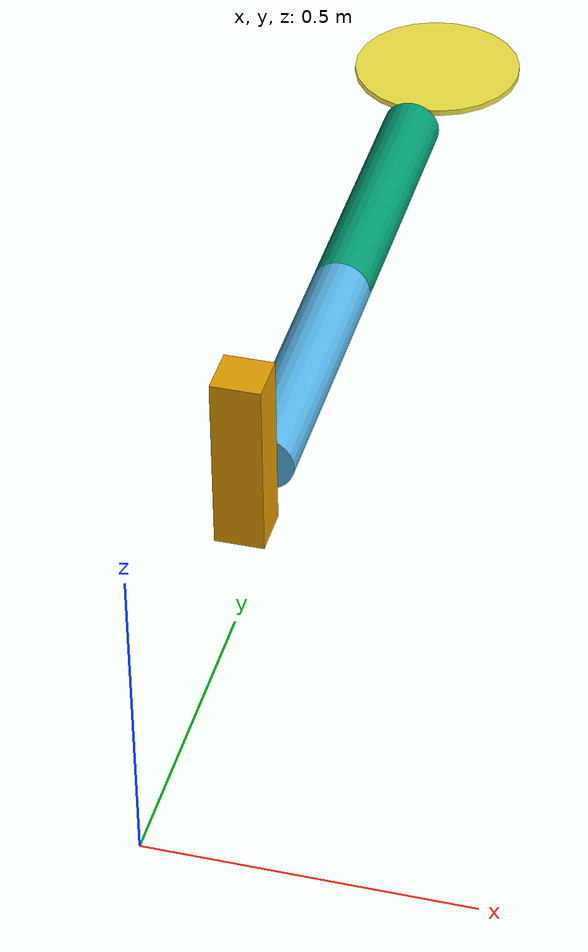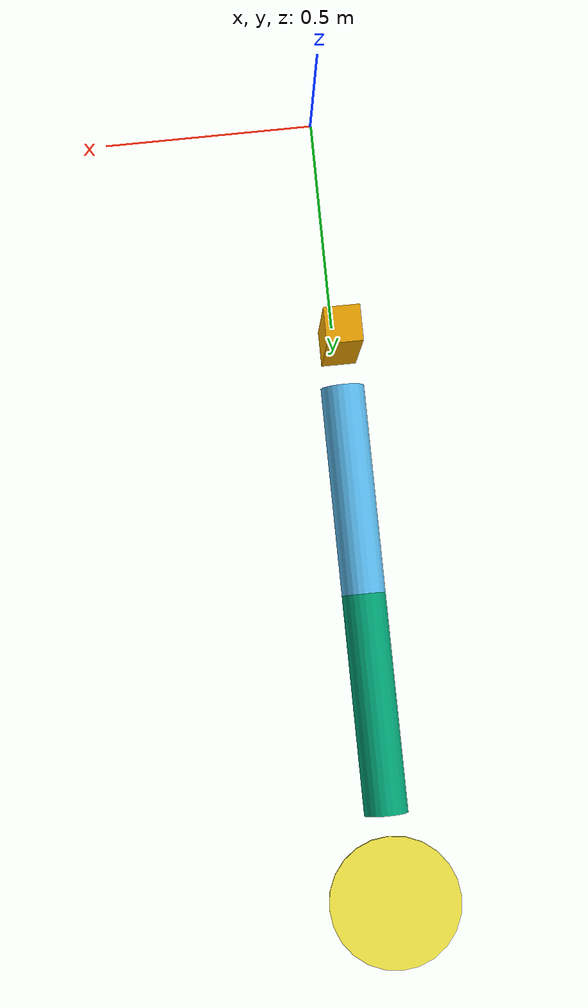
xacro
<?xml version="1.0"?>
<robot name="rocuto" xmlns:xacro="http://www.ros.org/wiki/xacro">

  <!-- Included URDF/XACRO Files-->

  <xacro:include filename="$(find rocuto_pkg)/urdf/macros.xacro" />
  <xacro:include filename="$(find rocuto_pkg)/urdf/materials.xacro" />
  <xacro:include filename="$(find rocuto_pkg)/urdf/gazebo_rocuto.urdf.gazebo" />

  <!-- constants -->
  <xacro:property name="M_PI" value="3.14159"/>

  <!-- world properties -->
  <xacro:property name="world_x" value="0.0" />
  <xacro:property name="world_y" value="0.0" />
  <xacro:property name="world_z" value="0.03" />

  <!-- frame properties -->
  <xacro:property name="frame_x_size" value="0.08" />
  <xacro:property name="frame_y_size" value="0.08" />
  <xacro:property name="frame_z_size" value="0.3" />

  <!-- link Properties -->
  <xacro:property name="link1_length" value="0.5" />
  <xacro:property name="link1_radius" value="0.05" />

  <!-- tool Properties -->
  <xacro:property name="tool_length" value="0.3" />
  <xacro:property name="tool_width" value="0.15" />
  <xacro:property name="tool_height" value="0.01" />

  <!-- frame origin -->
  <xacro:property name="frame_x_origin" value="0" />
  <xacro:property name="frame_y_origin" value="0.5708" />
  <xacro:property name="frame_z_origin" value="0.1" />

  <!-- joint 1 origin -->
  <xacro:property name="joint1_x" value="0" />
  <xacro:property name="joint1_y" value="${frame_y_origin + frame_y_size}" />
  <xacro:property name="joint1_z" value="0" />

  <!-- joint 2 origin -->
  <xacro:property name="joint2_x" value="0" />
  <xacro:property name="joint2_y" value="${link1_length}" />
  <xacro:property name="joint2_z" value="0" />

  <!-- joint 3 origin -->
  <xacro:property name="joint3_x" value="0" />
  <xacro:property name="joint3_y" value="${link1_length}" />
  <xacro:property name="joint3_z" value="0" />

  <!-- frame visual/collision/inertial origin -->
  <xacro:property name="frame_x_vis" value="${frame_x_origin}" />
  <xacro:property name="frame_y_vis" value="${frame_y_origin}" />
  <xacro:property name="frame_z_vis" value="${frame_z_origin + 0.15}" />

  <!-- link 1 visual/collision/inertial origin -->
  <xacro:property name="link1_x_vis" value="${joint1_x}" />
  <xacro:property name="link1_y_vis" value="${joint1_y - 0.38}" />
  <xacro:property name="link1_z_vis" value="${joint1_z + 0.15}" />

  <!-- link 2 visual/collision/inertial origin -->
  <xacro:property name="link2_x_vis" value="${joint2_x}" />
  <xacro:property name="link2_y_vis" value="${joint2_y - 0.25}" />
  <xacro:property name="link2_z_vis" value="${joint2_z + 0.15}" />

  <!-- tool visual/collision/inertial origin -->
  <xacro:property name="tool_x_vis" value="${joint3_x}" />
  <xacro:property name="tool_y_vis" value="${joint3_y - 0.3}" />
  <xacro:property name="tool_z_vis" value="${joint3_z + 0.15}" />

<!-- ramme på robotplatform -->
  <xacro:link_box link_name="frame" length="${frame_x_size}" width="${frame_y_size}" height="${frame_z_size}" density="1" mesh_name="nofile">
    <!-- origin visual -->
    <origin xyz="${frame_x_vis} ${frame_y_vis} ${frame_z_vis}" rpy="0 0 0"/>
    <!-- origin collision -->
    <origin xyz="${frame_x_vis} ${frame_y_vis} ${frame_z_vis}" rpy="0 0 0"/>
    <!-- origin inertia -->
    <origin xyz="${frame_x_vis} ${frame_y_vis} ${frame_z_vis}" rpy="0 0 0"/>
  </xacro:link_box>

  <!-- leddet mellom ramme og link1 -->
  <joint name="frame_to_link1" type="revolute">
    <origin xyz="${joint1_x} ${joint1_y} ${joint1_z}" rpy="0 0 0"/>
    <parent link="frame"/>
    <child link="link1"/>
    <axis xyz="0 0 1" rpy="0 0 0"/>
    <limit effort="100" velocity="100" lower="-${pi/2}" upper="${pi/2}"/>
    <joint_properties damping="0.0" friction="0.0"/>
  </joint>

  <transmission name="link1_tran">
    <type>transmission_interface/SimpleTransmission</type>
    <joint name="frame_to_link1">
      <hardwareInterface>hardware_interface/PositionJointInterface</hardwareInterface>
    </joint>
    <actuator name="link1_motor">
      <hardwareInterface>hardware_interface/PositionJointInterface</hardwareInterface>
      <mechanicalReduction>1</mechanicalReduction>
    </actuator>
  </transmission>

<!-- link1 -->
  <xacro:link_cylinder link_name="link1" radius="${link1_radius}" length="${link1_length}" density="1" mesh_name="nofile">
    <!-- origin visual -->
    <origin xyz="${link1_x_vis} ${link1_y_vis} ${link1_z_vis}" rpy="${M_PI/2} 0 0"/>
    <!-- origin collision -->
    <origin xyz="${link1_x_vis} ${link1_y_vis} ${link1_z_vis}" rpy="${M_PI/2} 0 0"/>
    <!-- origin inertia -->
    <origin xyz="${link1_x_vis} ${link1_y_vis} ${link1_z_vis}" rpy="${M_PI/2} 0 0"/>
  </xacro:link_cylinder>

  <!-- leddet mellom link1 og link2 -->
  <joint name="link1_to_link2" type="revolute">
    <origin xyz="${joint2_x} ${joint2_y} ${joint2_z}" rpy="0 0 0"/>
    <parent link="link1"/>
    <child link="link2"/>
    <axis xyz="0 0 1" rpy="0 0 0"/>
    <limit effort="100" velocity="100" lower="-${3*pi/4}" upper="${3*pi/4}"/>
    <joint_properties damping="0.0" friction="0.0"/>
  </joint>

  <transmission name="link2_tran">
    <type>transmission_interface/SimpleTransmission</type>
    <joint name="link1_to_link2">
      <hardwareInterface>hardware_interface/PositionJointInterface</hardwareInterface>
    </joint>
    <actuator name="link2_motor">
      <hardwareInterface>hardware_interface/PositionJointInterface</hardwareInterface>
      <mechanicalReduction>1</mechanicalReduction>
    </actuator>
  </transmission>

<!-- link2 -->
  <xacro:link_cylinder link_name="link2" radius="${link1_radius}" length="${link1_length}" density="1" mesh_name="nofile">
    <!-- origin visual -->
    <origin xyz="${link2_x_vis} ${link2_y_vis} ${link2_z_vis}" rpy="${M_PI/2} 0 0"/>
    <!-- origin collision -->
    <origin xyz="${link2_x_vis} ${link2_y_vis} ${link2_z_vis}" rpy="${M_PI/2} 0 0"/>
    <!-- origin inertia -->
    <origin xyz="${link2_x_vis} ${link2_y_vis} ${link2_z_vis}" rpy="${M_PI/2} 0 0"/>
  </xacro:link_cylinder>

<!-- Dette er ikke et ledd bare kobling mellom link2 og tool -->
  <joint name="link2_to_tool" type="fixed">
    <origin xyz="${joint3_x} ${joint3_y} ${joint3_z}" rpy="0 0 0"/>
    <parent link="link2"/>
    <child link="tool"/>
  </joint>

<!-- tool -->
  <xacro:link_cylinder link_name="tool" radius="${tool_width}" length="${tool_height}" density="1" mesh_name="nofile">
    <!-- origin visual -->
    <origin xyz="${tool_x_vis} ${tool_y_vis} ${tool_z_vis}" rpy="0 0 0"/>
    <!-- origin collision -->
    <origin xyz="${tool_x_vis} ${tool_y_vis} ${tool_z_vis}" rpy="0 0 0"/>
    <!-- origin inertia -->
    <origin xyz="${tool_x_vis} ${tool_y_vis} ${tool_z_vis}" rpy="0 0 0"/>
  </xacro:link_cylinder>

<!-- Fixed joint to make frame static in world -->
<link name="world" />

<joint name="world_joint" type="fixed">
   <parent link="world" />
   <child link = "frame" />
   <origin xyz="${world_x} ${world_y} ${world_z}" rpy="0.0 0.0 0.0" />
</joint>

</robot>

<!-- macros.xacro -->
<!--
	definitions of some macros for easier description of the robot
-->

<robot xmlns:xacro="http://www.ros.org/wiki/xacro">

  <xacro:macro name="link_box" params="link_name length width height density:=1 mesh_name:='nofile' *origin_vis *origin_col *origin_inertial">
    <xacro:property name="mass" value="${length*height*width*density}" />
    <link name="${link_name}">
      <visual>
        <xacro:insert_block name="origin_vis" />
        <geometry>
          <xacro:if value="${mesh_name == 'nofile'}">
            <box size="${length} ${width} ${height}"/>
          </xacro:if>
          <xacro:unless value="${mesh_name == 'nofile'}">
            <mesh filename="${mesh_name}" />
          </xacro:unless>
        </geometry>
      </visual>
      <collision>
        <xacro:insert_block name="origin_col" />
        <geometry>
          <box size="${length} ${width} ${height}"/>
        </geometry>
      </collision>
      <inertial>
        <xacro:insert_block name="origin_inertial" />
        <mass value="${mass}"/>
        <inertia
          ixx="${mass*(pow(height,2) + pow(width,2))/12}" ixy="0.0" ixz="0.0"
          iyy="${mass*(pow(length,2) + pow(height,2))/12}" iyz="0.0"
          izz="${mass*(pow(length,2) + pow(width,2))/12}"/>
      </inertial>
    </link>

    <gazebo reference="${link_name}_box">
      <mu1 value="1.0"/>
      <mu2 value="1.0"/>
      <kp  value="10000000.0" />

      <kd>100.0</kd>
      <minDepth>0.001</minDepth>
      <maxVel>1.0</maxVel>

      <material>gazebo/red</material>
    </gazebo>

  </xacro:macro>

  <xacro:macro name="link_cylinder" params="link_name radius length density:=1 mesh_name:='nofile' *origin_vis *origin_col *origin_inertial">
    <xacro:property name="mass" value="${pi*length*pow(radius,2)*density}" />
    <link name="${link_name}">
      <visual>
        <xacro:insert_block name="origin_vis" />
        <geometry>
          <xacro:if value="${mesh_name == 'nofile'}">
            <cylinder length="${length}" radius="${radius}"/>
          </xacro:if>
          <xacro:unless value="${mesh_name == 'nofile'}">
            <mesh filename="${mesh_name}" />
          </xacro:unless>
        </geometry>
      </visual>
      <collision>
        <xacro:insert_block name="origin_col" />
        <geometry>
          <cylinder length="${length}" radius="${radius}"/>
        </geometry>
      </collision>
      <inertial>
        <xacro:insert_block name="origin_inertial" />
        <mass value="${mass}"/>
        <inertia
          ixx="${mass*(3*pow(radius,2)+pow(length,2))/12}" ixy="0.0" ixz="0.0"
          iyy="${mass*(3*pow(radius,2)+pow(length,2))/12}" iyz="0.0"
          izz="${mass*pow(radius,2)/2}"/>
      </inertial>
    </link>

    <gazebo reference="${link_name}_cylinder">
      <mu1 value="1.0"/>
      <mu2 value="1.0"/>
      <kp  value="10000000.0" />

      <kd>100.0</kd>
      <minDepth>0.001</minDepth>
      <maxVel>1.0</maxVel>

      <material>Gazebo/blue</material>
    </gazebo>

  </xacro:macro>

</robot>

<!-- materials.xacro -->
<robot>

  <material name="black">
    <color rgba="${0.0} ${0.0} ${0.0} ${1.0}"/>
  </material>

  <material name="blue">
    <color rgba="${0.0} ${0.0} ${0.8} ${1.0}"/>
  </material>

  <material name="green">
    <color rgba="${0.0} ${0.8} ${0.0} ${1.0}"/>
  </material>

  <material name="grey">
    <color rgba="${0.2} ${0.2} ${0.2} ${1.0}"/>
  </material>

  <material name="orange">
    <color rgba="${255/255} ${108/255} ${10/255} ${1.0}"/>
  </material>

  <material name="brown">
    <color rgba="${222/255} ${207/255} ${195/255} ${1.0}"/>
  </material>

  <material name="red">
    <color rgba="${0.8} ${0.0} ${0.0} ${1.0}"/>
  </material>

  <material name="white">
    <color rgba="${1.0} ${1.0} ${1.0} ${1.0}"/>
  </material>

</robot>
